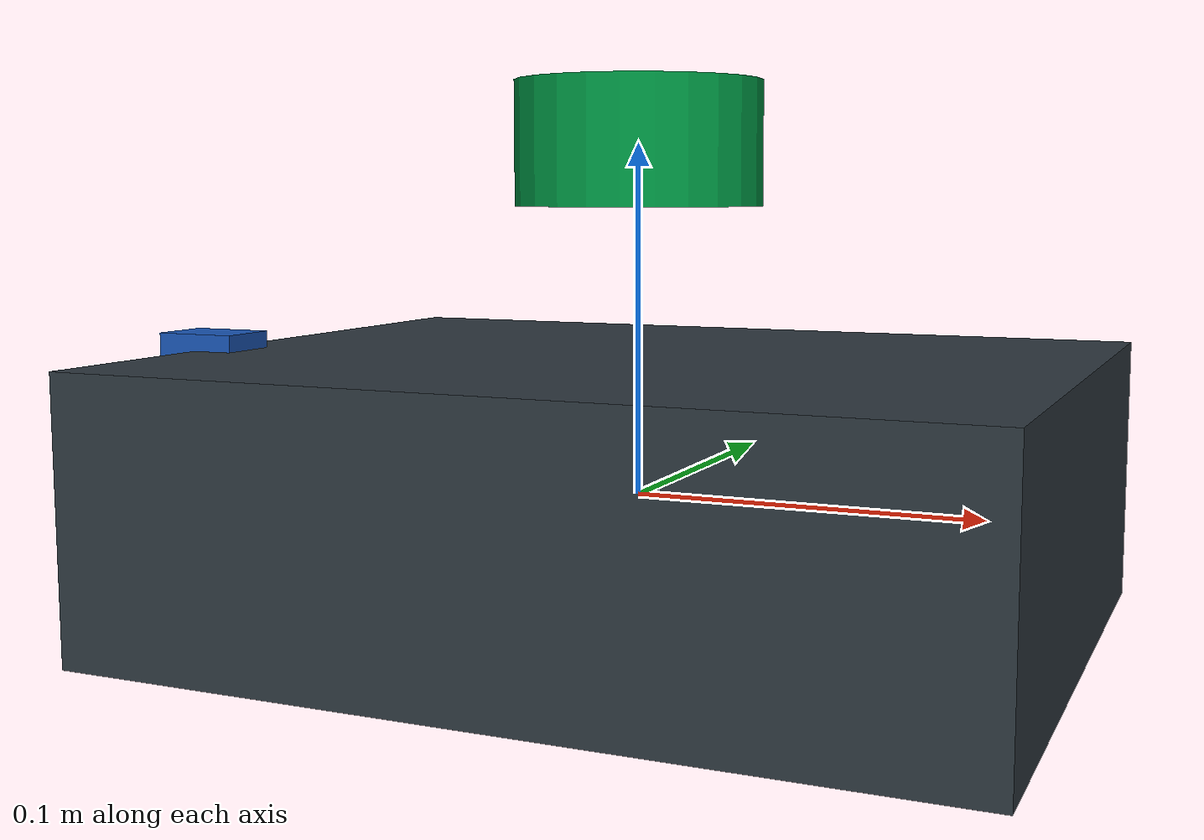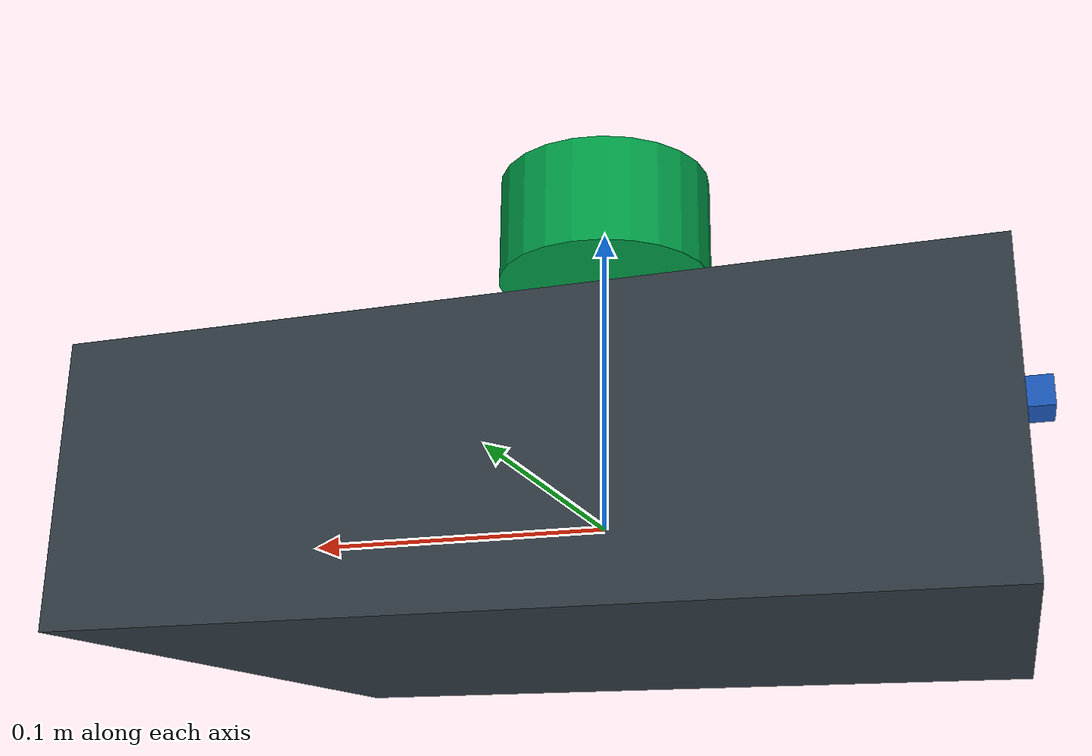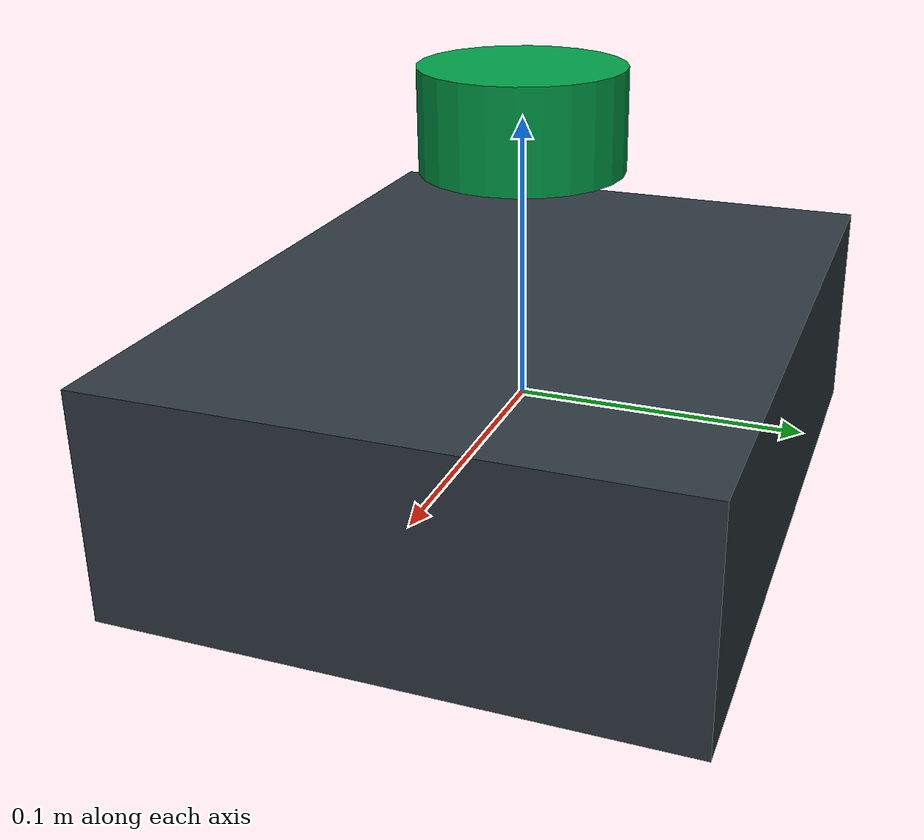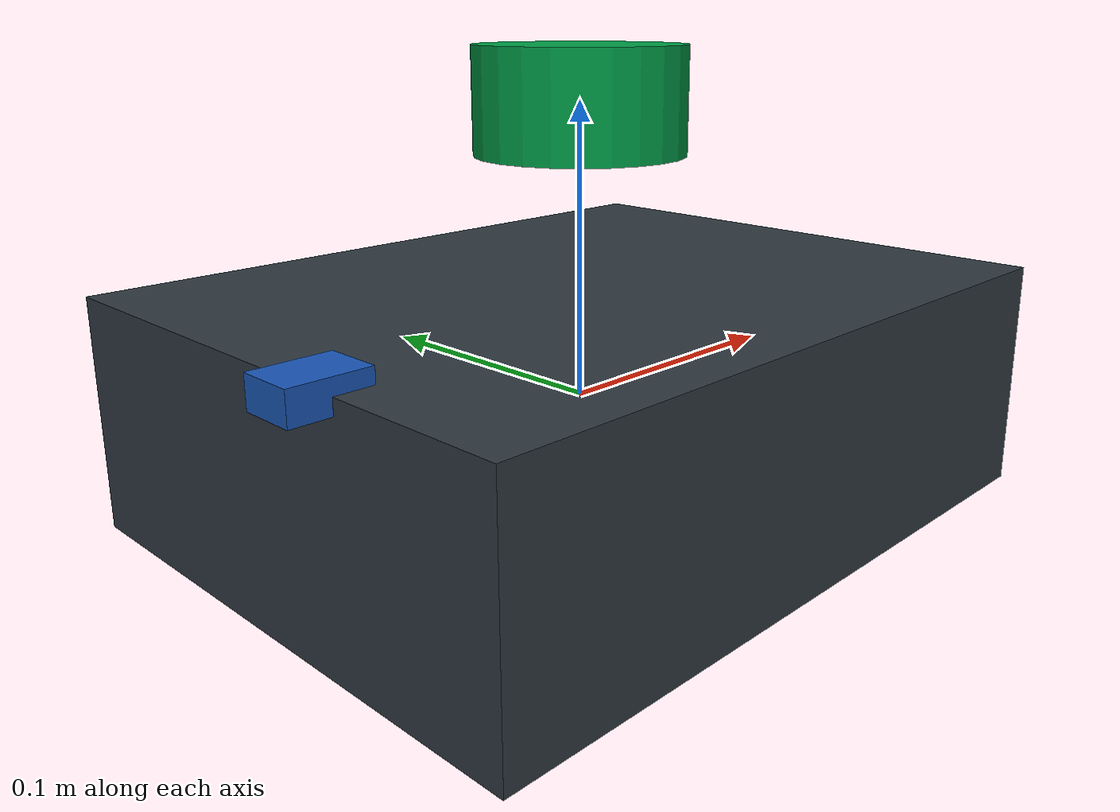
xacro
<?xml version="1.0"?>
<robot name="inspection_tracked_robot" xmlns:xacro="http://ros.org/wiki/xacro">
  <xacro:property name="body_length" value="0.25"/>
  <xacro:property name="body_width" value="0.196"/>
  <xacro:property name="body_height" value="0.08"/>

  <link name="base_link">
    <visual>
      <origin xyz="0 0 0" rpy="0 0 0"/>
      <geometry>
        <box size="${body_length} ${body_width} ${body_height}"/>
      </geometry>
      <material name="inspection_body">
        <color rgba="0.18 0.22 0.25 1.0"/>
      </material>
    </visual>
    <collision>
      <origin xyz="0 0 0" rpy="0 0 0"/>
      <geometry>
        <box size="${body_length} ${body_width} ${body_height}"/>
      </geometry>
    </collision>
  </link>

  <link name="laser">
    <visual>
      <origin xyz="0 0 0" rpy="0 0 0"/>
      <geometry>
        <cylinder radius="0.035" length="0.035"/>
      </geometry>
      <material name="laser_green">
        <color rgba="0.0 0.62 0.28 1.0"/>
      </material>
    </visual>
    <inertial>
      <origin xyz="0 0 0" rpy="0 0 0"/>
      <mass value="0.1"/>
      <inertia ixx="0.00005" ixy="0.0" ixz="0.0" iyy="0.00005" iyz="0.0" izz="0.00005"/>
    </inertial>
  </link>

  <joint name="base_to_laser" type="fixed">
    <parent link="base_link"/>
    <child link="laser"/>
    <origin xyz="0 0 0.10" rpy="0 0 3.1415926"/>
  </joint>

  <link name="imu_link">
    <visual>
      <origin xyz="0 0 0" rpy="0 0 0"/>
      <geometry>
        <box size="0.025 0.018 0.010"/>
      </geometry>
      <material name="imu_blue">
        <color rgba="0.1 0.34 0.72 1.0"/>
      </material>
    </visual>
    <inertial>
      <origin xyz="0 0 0" rpy="0 0 0"/>
      <mass value="0.03"/>
      <inertia ixx="0.00001" ixy="0.0" ixz="0.0" iyy="0.00001" iyz="0.0" izz="0.00001"/>
    </inertial>
  </link>

  <joint name="base_to_imu" type="fixed">
    <parent link="base_link"/>
    <child link="imu_link"/>
    <origin xyz="-0.125 -0.031 0.040" rpy="0 0 0"/>
  </joint>
</robot>
